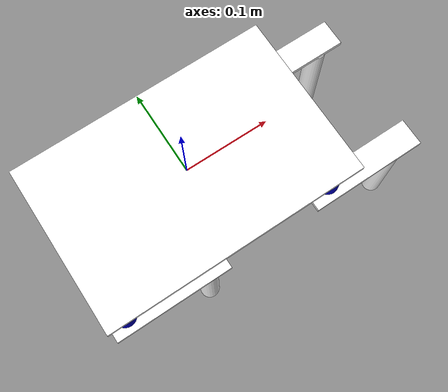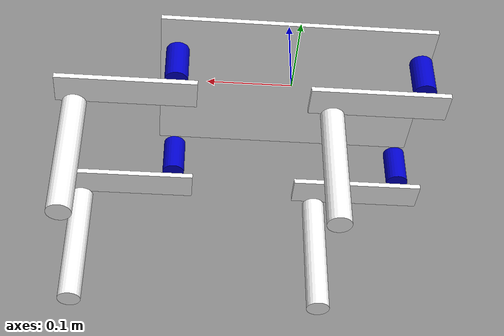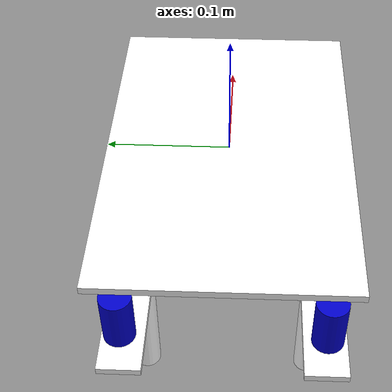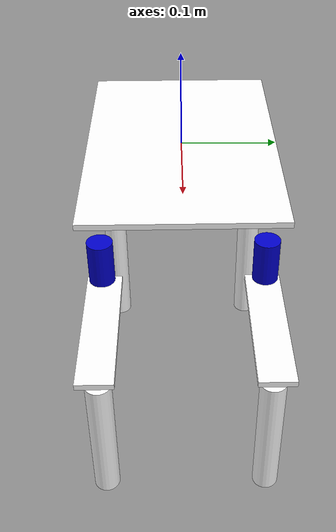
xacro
<?xml version="1.0"?>
<robot xmlns:xacro="http://www.ros.org/wiki/xacro" name="quadruped">
  <!-- ############################################
       include other xacro files
       ############################################ -->
  <xacro:include filename="$(cwd)/urdf/colors.xacro" />
  <xacro:include filename="$(cwd)/urdf/macros.xacro" />

  <!-- ############################################
       Parameters
       ############################################ -->

  <xacro:property name="bodywidth"       value="0.20" />
  <xacro:property name="bodylen"         value="0.31" />
  <xacro:property name="bodythick"       value="0.006" />
  <xacro:property name="legbaseoffset"   value="0.053" />
  <xacro:property name="body_mass"       value="2" />
  <!-- ############################################
       Base
       ############################################ -->

  <link name="base_link">
    <visual>
      <geometry>
        <box size="${bodylen} ${bodywidth} ${bodythick}"/>
      </geometry>
      <origin rpy="0 0 0" xyz="0 0 0.0"/>
      <material name="white"/>
    </visual>
    <collision>
      <geometry>
        <box size="${bodylen} ${bodywidth} ${bodythick}"/>
      </geometry>
      <origin rpy="0 0 0" xyz="0 0 0.0"/>
    </collision>
      <inertial>
        <mass value="${body_mass}"/>
        <inertia ixx="0.4" ixy="0.0" ixz="0.0" iyy="0.4" iyz="0.0" izz="0.2"/>
      </inertial>
  </link>

  <!-- ############################################
       leg - front left
       ############################################ -->

  <xacro:leg prefix="front_left"></xacro:leg>
  <joint name="base_front_left_joint" type="revolute">
    <parent link="base_link"/>
    <child link="front_left_hip_link"/>
    <origin xyz="${bodylen/2-servolen/2} ${bodywidth/2-servowidth/2} -${legbaseoffset}"/>
    <axis xyz="1 0 0" />
    <limit effort="${servo_effort}" lower="-0.785" upper="0.785" velocity="${servo_velocity}"/>
  </joint>

  <!-- ############################################
       leg - front right
       ############################################ -->

  <xacro:leg prefix="front_right"></xacro:leg>

  <joint name="base_front_right_joint" type="revolute">
    <parent link="base_link"/>
    <child link="front_right_hip_link"/>
    <origin xyz="${bodylen/2-servolen/2} -${bodywidth/2-servowidth/2} -${legbaseoffset}"/>
    <axis xyz="-1 0 0" />
    <limit effort="${servo_effort}" lower="-0.785" upper="0.785" velocity="${servo_velocity}"/>
  </joint>

  <!-- ############################################
       leg - rear left
       ############################################ -->

  <xacro:leg prefix="rear_left"></xacro:leg>

  <joint name="base_rear_left_joint" type="revolute">
    <parent link="base_link"/>
    <child link="rear_left_hip_link"/>
    <origin xyz="-${bodylen/2-servolen/2} ${bodywidth/2-servowidth/2} -${legbaseoffset}"/>
    <axis xyz="1 0 0" />
    <limit effort="${servo_effort}" lower="-0.785" upper="0.785" velocity="${servo_velocity}"/>
  </joint>

  <!-- ############################################
       leg - rear right
       ############################################ -->

  <xacro:leg prefix="rear_right"></xacro:leg>

  <joint name="base_rear_right_joint" type="revolute">
    <parent link="base_link"/>
    <child link="rear_right_hip_link"/>
    <origin xyz="-${bodylen/2-servolen/2} -${bodywidth/2-servowidth/2} -${legbaseoffset}"/>
    <axis xyz="-1 0 0" />
    <limit effort="${servo_effort}" lower="-0.785" upper="0.785" velocity="${servo_velocity}"/>
  </joint>
</robot>

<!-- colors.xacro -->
<robot xmlns:xacro="http://www.ros.org/wiki/xacro" name="colors">
  <!-- ############################################
       Colors
       ############################################ -->
  <material name="blue">
    <color rgba="0 0 0.8 1"/>
  </material>
  <material name="black">
    <color rgba="0 0 0 1"/>
  </material>
  <material name="white">
    <color rgba="1 1 1 1"/>
  </material>
</robot>

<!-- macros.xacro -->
<robot xmlns:xacro="http://www.ros.org/wiki/xacro" name="macros">
<!-- ############################################
       Macro - servo
     ############################################ -->

  <xacro:property name="servowidth"      value="0.04" />
  <xacro:property name="servolen"        value="0.04" />
  <xacro:property name="servothick"      value="0.02" />
  <xacro:property name="servo_velocity"  value="${60/180*pi/0.16}" />
  <xacro:property name="servo_effort"    value="1000.0" />

  <xacro:macro name="servo" params="suffix">
    <link name="servo_${suffix}_link">
    <visual>
      <geometry>
        <box size="${servolen} ${servowidth} ${servothick}"/>
      </geometry>
      <origin rpy="0 0 0" xyz="0 0 0.0"/>
      <material name="black"/>
    </visual>
    <collision>
      <geometry>
        <box size="${servolen} ${servowidth} ${servothick}"/>
      </geometry>
      <origin rpy="0 0 0" xyz="0 0 0.0"/>
    </collision>
    </link>
  </xacro:macro>

  <!-- ############################################
       Parameters - for leg
       ############################################ -->
  <xacro:property name="pi"               value="3.14159265359" />
  <xacro:property name="hip_length"       value="0.045" />
  <xacro:property name="hip_radius"       value="0.0127" />
  <xacro:property name="hip_mass"         value="0.03" />
  <xacro:property name="thigh_length"     value="0.15" />
  <xacro:property name="thigh_width"      value="0.035" />
  <xacro:property name="thigh_thickness"  value="0.006" />
  <xacro:property name="thigh_mass"       value="0.03" />
  <xacro:property name="x_offset_hip_to_thigh" value="0.023" />
  <xacro:property name="servo_velocity"  value="${60/180*pi/0.16}" />
  <xacro:property name="servo_effort"    value="1000.0" />
  <xacro:property name="gap_hip_to_thigh" value="0.015" />
  <xacro:property name="min_angle_thigh_joint" value="-0.5" />
  <xacro:property name="max_angle_thigh_joint" value="${pi/2}" />
  <xacro:property name="leg_length"       value="0.14" />
  <xacro:property name="leg_radius"       value="0.0127" />
  <xacro:property name="leg_mass"         value="0.03" />
  <xacro:property name="x_offset_thigh_to_leg" value="0.023" />
  <xacro:property name="gap_thigh_to_leg" value="0.015" />
  <xacro:property name="min_angle_leg_joint" value="-${pi/2}" />
  <xacro:property name="max_angle_leg_joint" value="${pi/2}" />
  <!-- ############################################
       Macro - leg
       ############################################ -->

  <xacro:macro name="leg" params="prefix">
    <link name="${prefix}_hip_link">
      <visual>
        <geometry>
          <cylinder length="${hip_length}" radius="${hip_radius}"/>
        </geometry>
        <origin rpy="0 0 0" xyz="0 0 0.0"/>
        <material name="blue"/>
      </visual>
      <collision>
        <geometry>
          <cylinder length="${hip_length}" radius="${hip_radius}"/>
        </geometry>
        <origin rpy="0 0 0" xyz="0 0 0.0"/>
      </collision>
      <inertial>
        <mass value="${hip_mass}"/>
        <inertia ixx="0.4" ixy="0.0" ixz="0.0" iyy="0.4" iyz="0.0" izz="0.2"/>
      </inertial>
    </link>

    <link name="${prefix}_thigh_link">
      <visual>
        <geometry>
          <box size="${thigh_length} ${thigh_width} ${thigh_thickness}"/>
        </geometry>
        <material name="white"/>
        <origin rpy="0 0 0" xyz="${thigh_length/2-x_offset_hip_to_thigh} 0 -${gap_hip_to_thigh}"/>
      </visual>
      <collision>
        <geometry>
          <box size="${thigh_length} ${thigh_width} ${thigh_thickness}"/>
        </geometry>
        <material name="white"/>
        <origin rpy="0 0 0" xyz="${thigh_length/2-x_offset_hip_to_thigh} 0 -${gap_hip_to_thigh}"/>
      </collision>
      <inertial>
        <mass value="${thigh_mass}"/>
        <inertia ixx="0.4" ixy="0.0" ixz="0.0" iyy="0.4" iyz="0.0" izz="0.2"/>
      </inertial>
    </link>
    <joint name="${prefix}_hip_to_thigh" type="revolute">
      <parent link="${prefix}_hip_link"/>
      <child link="${prefix}_thigh_link"/>
      <origin xyz="0 0 -${hip_length/2+thigh_thickness/2}"/>
      <axis xyz="0 1 0"/>
      <limit effort="${servo_effort}" lower="${min_angle_thigh_joint}" upper="${max_angle_thigh_joint}" velocity="${servo_velocity}"/>
    </joint>
      <link name="${prefix}_leg_link">
      <visual>
        <geometry>
          <cylinder length="${leg_length}" radius="${leg_radius}"/>
        </geometry>
        <material name="white"/>
        <origin rpy="0 0 0" xyz="0 0 -${leg_length/2}"/>
      </visual>
      <collision>
        <geometry>
          <cylinder length="${leg_length}" radius="${leg_radius}"/>
        </geometry>
        <origin rpy="0 0 0" xyz="0 0 -${leg_length/2}"/>
      </collision>
      <inertial>
        <mass value="${leg_mass}"/>
        <inertia ixx="0.4" ixy="0.0" ixz="0.0" iyy="0.4" iyz="0.0" izz="0.2"/>
      </inertial>
    </link>

    <joint name="${prefix}_thigh_to_leg" type="revolute">
      <parent link="${prefix}_thigh_link"/>
      <child link="${prefix}_leg_link"/>
      <origin xyz="${thigh_length-x_offset_hip_to_thigh-x_offset_thigh_to_leg} 0 -${gap_hip_to_thigh+thigh_thickness+gap_thigh_to_leg}"/>
      <axis xyz="0 1 0"/>
      <limit effort="${servo_effort}" lower="${min_angle_leg_joint}" upper="${max_angle_leg_joint}" velocity="${servo_velocity}"/>
    </joint>
  </xacro:macro>

  <!-- ############################################
       Macro - left leg
       ############################################ -->
  <xacro:macro name="left_leg" params="prefix">
    <xacro:servo suffix="${prefix}"></xacro:servo>
    <xacro:leg prefix="${prefix}"></xacro:leg>
    <joint name="${prefix}_hip_joint" type="fixed">
      <parent link="servo_${prefix}_link"/>
      <child link="${prefix}_hip_link"/>
      <origin xyz="0 0 0"/>
    </joint>
  </xacro:macro>
</robot>
